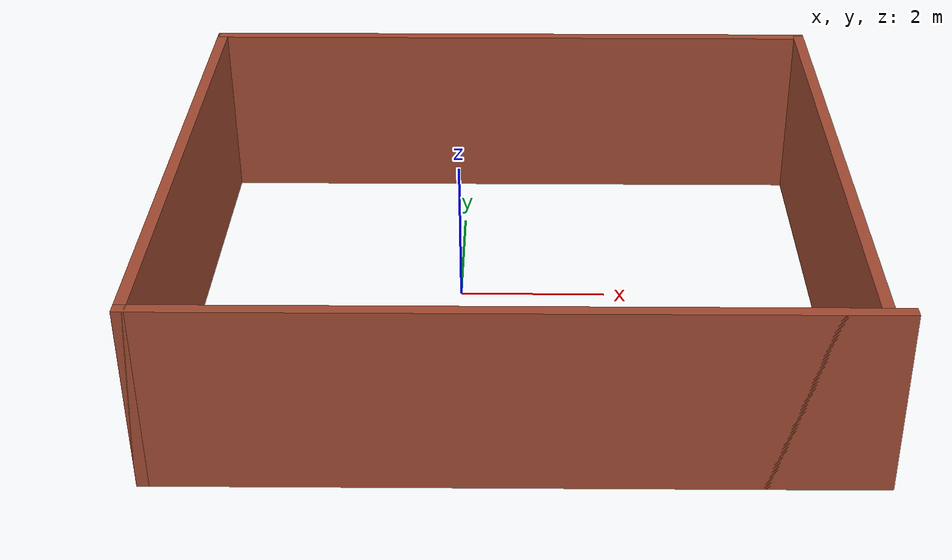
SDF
<?xml version='1.0'?>
<sdf version='1.6'>
  <model name='Temp'>
    <pose frame=''>0.780952 -0.456665 0 0 -0 0</pose>
    <link name='Wall_1'>
      <collision name='Wall_1_Collision'>
        <geometry>
          <box>
            <size>7.5 0.15 2.5</size>
          </box>
        </geometry>
        <pose frame=''>0 0 1.25 0 -0 0</pose>
      </collision>
      <visual name='Wall_1_Visual'>
        <pose frame=''>0 0 1.25 0 -0 0</pose>
        <geometry>
          <box>
            <size>7.5 0.15 2.5</size>
          </box>
        </geometry>
        <material>
          <script>
            <uri>file://media/materials/scripts/gazebo.material</uri>
            <name>Gazebo/Bricks</name>
          </script>
          <ambient>1 1 1 1</ambient>
        </material>
        <meta>
          <layer>0</layer>
        </meta>
      </visual>
      <pose frame=''>-4.425 -0 0 0 -0 -1.5708</pose>
    </link>
    <link name='Wall_2'>
      <collision name='Wall_2_Collision'>
        <geometry>
          <box>
            <size>9 0.15 2.5</size>
          </box>
        </geometry>
        <pose frame=''>0 0 1.25 0 -0 0</pose>
      </collision>
      <visual name='Wall_2_Visual'>
        <pose frame=''>0 0 1.25 0 -0 0</pose>
        <geometry>
          <box>
            <size>9 0.15 2.5</size>
          </box>
        </geometry>
        <material>
          <script>
            <uri>file://media/materials/scripts/gazebo.material</uri>
            <name>Gazebo/Bricks</name>
          </script>
          <ambient>1 1 1 1</ambient>
        </material>
        <meta>
          <layer>0</layer>
        </meta>
      </visual>
      <pose frame=''>0 -3.675 0 0 -0 0</pose>
    </link>
    <link name='Wall_3'>
      <collision name='Wall_3_Collision'>
        <geometry>
          <box>
            <size>2.25 0.15 2.5</size>
          </box>
        </geometry>
        <pose frame=''>0 0 1.25 0 -0 0</pose>
      </collision>
      <visual name='Wall_3_Visual'>
        <pose frame=''>0 0 1.25 0 -0 0</pose>
        <geometry>
          <box>
            <size>2.25 0.15 2.5</size>
          </box>
        </geometry>
        <material>
          <script>
            <uri>file://media/materials/scripts/gazebo.material</uri>
            <name>Gazebo/Bricks</name>
          </script>
          <ambient>1 1 1 1</ambient>
        </material>
        <meta>
          <layer>0</layer>
        </meta>
      </visual>
      <pose frame=''>3.375 -3.675 0 0 -0 3.14159</pose>
    </link>
    <link name='Wall_5'>
      <collision name='Wall_5_Collision'>
        <geometry>
          <box>
            <size>8.75 0.15 2.5</size>
          </box>
        </geometry>
        <pose frame=''>0 0 1.25 0 -0 0</pose>
      </collision>
      <visual name='Wall_5_Visual'>
        <pose frame=''>0 0 1.25 0 -0 0</pose>
        <geometry>
          <box>
            <size>8.75 0.15 2.5</size>
          </box>
        </geometry>
        <material>
          <script>
            <uri>file://media/materials/scripts/gazebo.material</uri>
            <name>Gazebo/Bricks</name>
          </script>
          <ambient>1 1 1 1</ambient>
        </material>
        <meta>
          <layer>0</layer>
        </meta>
      </visual>
      <pose frame=''>-0.125 3.675 0 0 -0 0</pose>
    </link>
    <link name='Wall_6'>
      <collision name='Wall_6_Collision'>
        <geometry>
          <box>
            <size>7.5 0.15 2.5</size>
          </box>
        </geometry>
        <pose frame=''>0 0 1.25 0 -0 0</pose>
      </collision>
      <visual name='Wall_6_Visual'>
        <pose frame=''>0 0 1.25 0 -0 0</pose>
        <geometry>
          <box>
            <size>7.5 0.15 2.5</size>
          </box>
        </geometry>
        <material>
          <script>
            <uri>file://media/materials/scripts/gazebo.material</uri>
            <name>Gazebo/Bricks</name>
          </script>
          <ambient>1 1 1 1</ambient>
        </material>
        <meta>
          <layer>0</layer>
        </meta>
      </visual>
      <pose frame=''>4.175 -0 0 0 -0 -1.5708</pose>
    </link>
    <static>1</static>
  </model>
</sdf>
